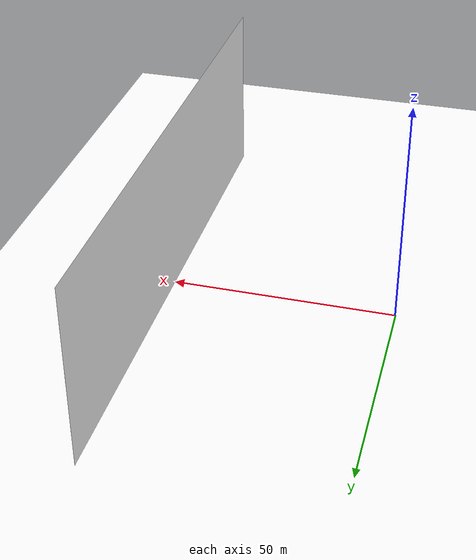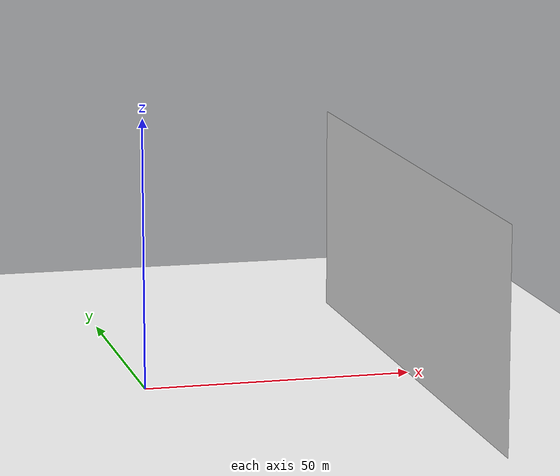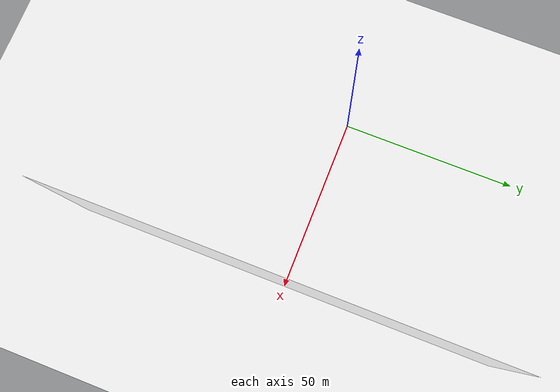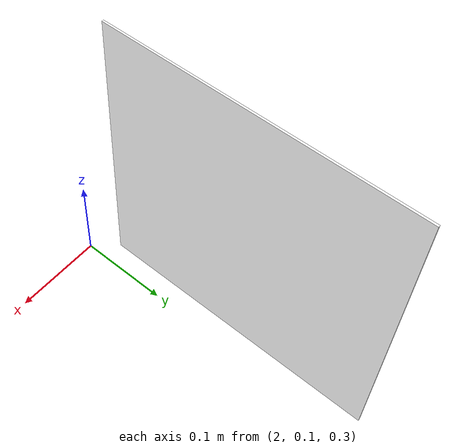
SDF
<?xml version="1.0" ?>
<sdf version="1.10">
  <world name="tracker_world">

    <physics name="20ms" type="ignored">
      <max_step_size>0.02</max_step_size>
      <real_time_factor>1.0</real_time_factor>
    </physics>

    <!-- Core Gazebo Harmonic system plugins -->
    <plugin filename="gz-sim-physics-system"
            name="gz::sim::systems::Physics"/>
    <plugin filename="gz-sim-user-commands-system"
            name="gz::sim::systems::UserCommands"/>
    <plugin filename="gz-sim-scene-broadcaster-system"
            name="gz::sim::systems::SceneBroadcaster"/>
    <!-- Sensors system required for camera rendering in headless mode -->
    <plugin filename="gz-sim-sensors-system"
            name="gz::sim::systems::Sensors">
      <render_engine>ogre2</render_engine>
    </plugin>

    <gravity>0 0 -9.8</gravity>
    <magnetic_field>6e-06 2.3e-05 -4.2e-05</magnetic_field>
    <atmosphere type="adiabatic"/>

    <scene>
      <ambient>0.4 0.4 0.4 1</ambient>
      <background>0.7 0.7 0.7 1</background>
      <shadows>true</shadows>
    </scene>

    <!-- Directional sun light — direction and intensity configurable at runtime -->
    <light type="directional" name="sun">
      <cast_shadows>true</cast_shadows>
      <pose>0 0 10 0 0 0</pose>
      <diffuse>0.8 0.8 0.8 1</diffuse>
      <specular>0.2 0.2 0.2 1</specular>
      <direction>-0.5 0.1 -0.9</direction>
      <attenuation>
        <range>1000</range>
        <constant>0.9</constant>
        <linear>0.01</linear>
        <quadratic>0.001</quadratic>
      </attenuation>
    </light>

    <!-- Ground plane -->
    <model name="ground_plane">
      <static>true</static>
      <link name="link">
        <collision name="collision">
          <geometry>
            <plane>
              <normal>0 0 1</normal>
              <size>100 100</size>
            </plane>
          </geometry>
        </collision>
        <visual name="visual">
          <geometry>
            <plane>
              <normal>0 0 1</normal>
              <size>100 100</size>
            </plane>
          </geometry>
          <material>
            <ambient>1.0 1.0 1.0 1</ambient>
            <diffuse>1.0 1.0 1.0 1</diffuse>
            <pbr>
              <metal>
                <albedo_map>model://ground_texture/materials/textures/dry-dirt.jpg</albedo_map>
                <metalness>0.0</metalness>
                <roughness>1.0</roughness>
              </metal>
            </pbr>
          </material>
        </visual>
      </link>
    </model>

    <include>
      <name>face_0</name>
      <uri>model://face_billboard</uri>
      <pose>2.0 0.3 0.5 0 0 0</pose>
    </include>

    <!-- Background wall: fills camera FOV at 5 m, hills texture makes
         pan/tilt motion clearly visible as parallax from camera view. -->
    <include>
      <name>background_wall</name>
      <uri>model://background_wall</uri>
      <pose>50.0 0 20.0 0 0 0</pose>
    </include>

  </world>
</sdf>

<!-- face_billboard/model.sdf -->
<sdf version="1.10">
  <model name="face_billboard">
    <static>true</static>

    <plugin filename="gz-sim-pose-publisher-system"
            name="gz::sim::systems::PosePublisher">
      <publish_link_pose>false</publish_link_pose>
      <publish_nested_model_pose>false</publish_nested_model_pose>
      <publish_model_pose>true</publish_model_pose>
      <update_rate>10</update_rate>
    </plugin>

    <link name="link">
      <visual name="face_visual">
        <!-- Disable shadow casting so the transparent alpha edges don't cast
             a hard rectangular shadow from the billboard mesh boundary. -->
        <cast_shadows>false</cast_shadows>
        <geometry>
          <!--
            Thin in X (2 mm) so only the YZ faces are visible to the camera.
            0.3 × 0.3 m face area appears as ~76 px at 2 m (640×480, 60° FOV).
          -->
          <box>
            <size>0.002 0.3 0.3</size>
          </box>
        </geometry>
        <material>
          <ambient>1.0 1.0 1.0 1</ambient>
          <diffuse>1.0 1.0 1.0 0.99</diffuse>
          <pbr>
            <metal>
              <albedo_map>model://face_billboard/materials/textures/face_007.png</albedo_map>
              <metalness>0.0</metalness>
              <roughness>1.0</roughness>
            </metal>
          </pbr>
        </material>
      </visual>
    </link>
  </model>
</sdf>

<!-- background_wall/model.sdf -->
<sdf version="1.10">
  <model name="background_wall">
    <static>true</static>
    <link name="link">
      <visual name="wall_visual">
        <geometry>
          <box>
            <size>0.002 120.0 40.0</size>
          </box>
        </geometry>
        <material>
          <ambient>1.0 1.0 1.0 1</ambient>
          <diffuse>1.0 1.0 1.0 1</diffuse>
          <pbr>
            <metal>
              <albedo_map>model://background_wall/materials/textures/hills.jpg</albedo_map>
              <metalness>0.0</metalness>
              <roughness>1.0</roughness>
            </metal>
          </pbr>
        </material>
      </visual>
    </link>
  </model>
</sdf>
